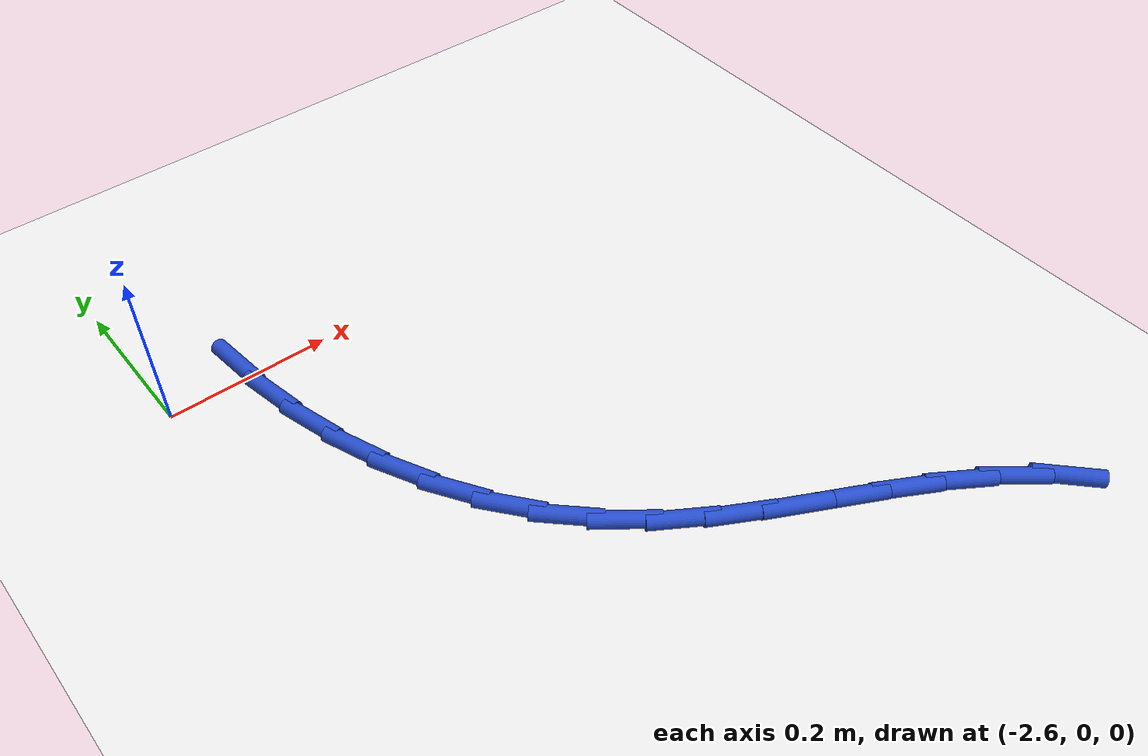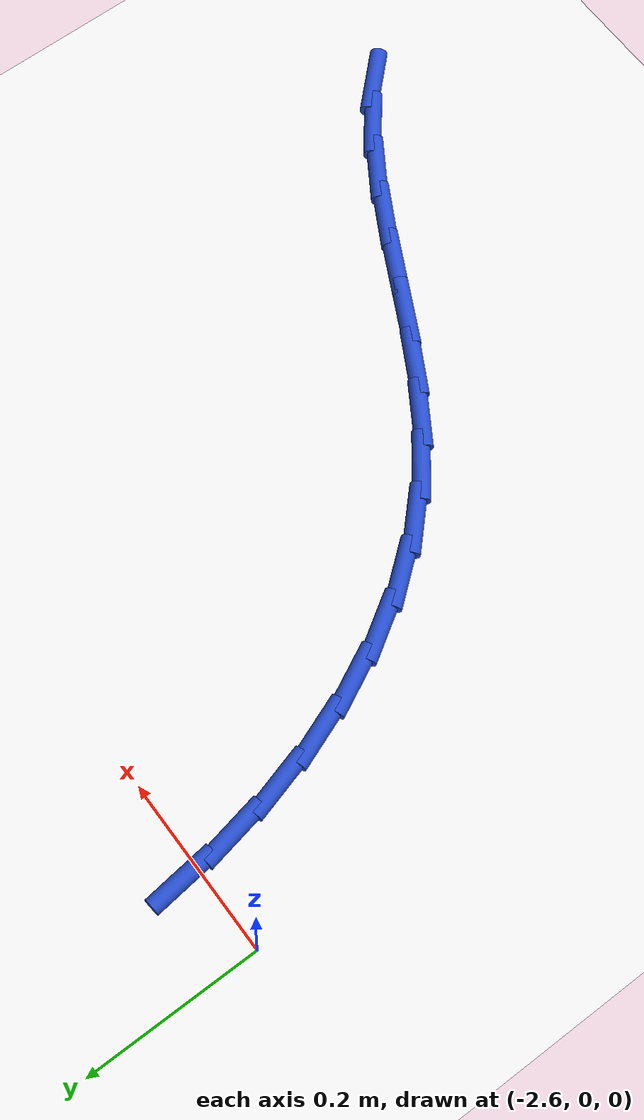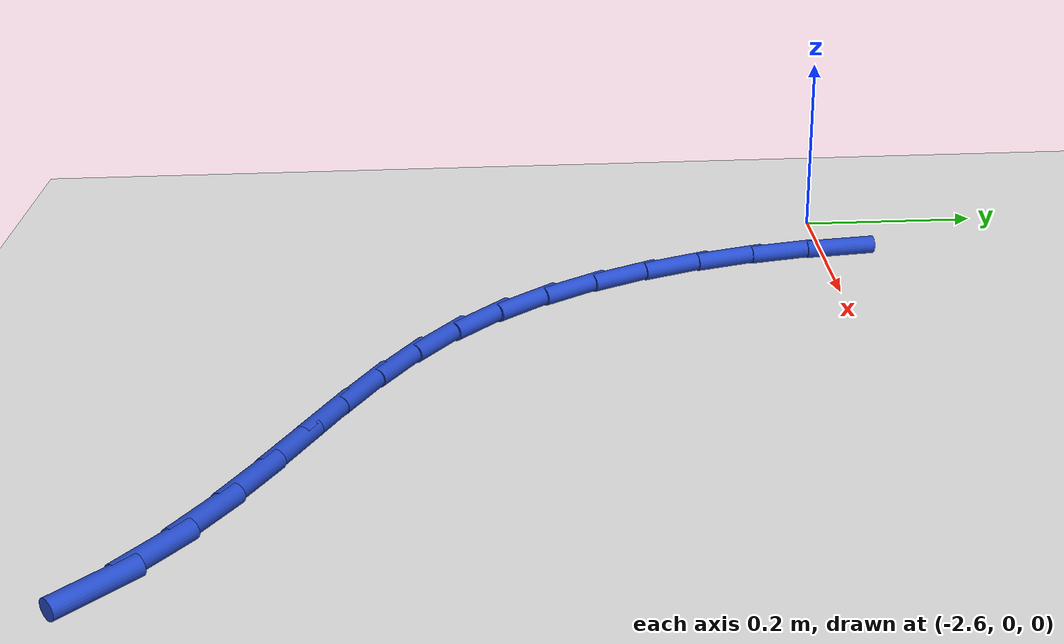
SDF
<sdf version="1.6">
 <world name="default">
  <model name="ground_plane">
   <static>1</static>
   <link name="link">
    <collision name="collision">
     <geometry><plane><normal>0 0 1</normal><size>100 100</size></plane></geometry>
     <surface><friction><ode><mu>100</mu><mu2>50</mu2></ode></friction></surface>
    </collision>
    <visual name="visual">
     <cast_shadows>0</cast_shadows>
     <geometry><plane><normal>0 0 1</normal><size>100 100</size></plane></geometry>
     <material>
      <script><uri>file://media/materials/scripts/gazebo.material</uri><name>Gazebo/WhiteGlow</name></script>
     </material>
    </visual>
   </link>
  </model>
  <model name="line">
   <link name="link_66">
    <pose>-2.5027474903569695 0.019230881125840347 0.01 0 1.57 -1.4562330927532967</pose>
    <collision name="collision">
     <geometry><cylinder><radius>0.01</radius><length>0.08</length></cylinder></geometry>
    </collision>
    <visual name="visual">
     <material>
      <script><name>Gazebo/Blue</name><uri>file://media/materials/scripts/gazebo.material</uri></script>
     </material>
     <geometry><cylinder><radius>0.01</radius><length>0.08</length></cylinder></geometry>
    </visual>
   </link>
   <link name="link_67">
    <pose>-2.4950839334856996 -0.04736989336510652 0.01 0 1.57 -1.3774307433401636</pose>
    <collision name="collision">
     <geometry><cylinder><radius>0.01</radius><length>0.08</length></cylinder></geometry>
    </collision>
    <visual name="visual">
     <material>
      <script><name>Gazebo/Blue</name><uri>file://media/materials/scripts/gazebo.material</uri></script>
     </material>
     <geometry><cylinder><radius>0.01</radius><length>0.08</length></cylinder></geometry>
    </visual>
   </link>
   <link name="link_68">
    <pose>-2.4823113702618294 -0.11259853952840747 0.01 0 1.57 -1.294803345546782</pose>
    <collision name="collision">
     <geometry><cylinder><radius>0.01</radius><length>0.08</length></cylinder></geometry>
    </collision>
    <visual name="visual">
     <material>
      <script><name>Gazebo/Blue</name><uri>file://media/materials/scripts/gazebo.material</uri></script>
     </material>
     <geometry><cylinder><radius>0.01</radius><length>0.08</length></cylinder></geometry>
    </visual>
   </link>
   <link name="link_69">
    <pose>-2.464422709136809 -0.1757600441526359 0.01 0 1.57 -1.2067801490936627</pose>
    <collision name="collision">
     <geometry><cylinder><radius>0.01</radius><length>0.08</length></cylinder></geometry>
    </collision>
    <visual name="visual">
     <material>
      <script><name>Gazebo/Blue</name><uri>file://media/materials/scripts/gazebo.material</uri></script>
     </material>
     <geometry><cylinder><radius>0.01</radius><length>0.08</length></cylinder></geometry>
    </visual>
   </link>
   <link name="link_70">
    <pose>-2.44141085856209 -0.23615939402636552 0.01 0 1.57 -1.111781051064293</pose>
    <collision name="collision">
     <geometry><cylinder><radius>0.01</radius><length>0.08</length></cylinder></geometry>
    </collision>
    <visual name="visual">
     <material>
      <script><name>Gazebo/Blue</name><uri>file://media/materials/scripts/gazebo.material</uri></script>
     </material>
     <geometry><cylinder><radius>0.01</radius><length>0.08</length></cylinder></geometry>
    </visual>
   </link>
   <link name="link_71">
    <pose>-2.4132687269891235 -0.2931015759381671 0.01 0 1.57 -1.0083139645344208</pose>
    <collision name="collision">
     <geometry><cylinder><radius>0.01</radius><length>0.08</length></cylinder></geometry>
    </collision>
    <visual name="visual">
     <material>
      <script><name>Gazebo/Blue</name><uri>file://media/materials/scripts/gazebo.material</uri></script>
     </material>
     <geometry><cylinder><radius>0.01</radius><length>0.08</length></cylinder></geometry>
    </visual>
   </link>
   <link name="link_72">
    <pose>-2.3799892228693604 -0.3458915766766143 0.01 0 1.57 -0.8951692463080796</pose>
    <collision name="collision">
     <geometry><cylinder><radius>0.01</radius><length>0.08</length></cylinder></geometry>
    </collision>
    <visual name="visual">
     <material>
      <script><name>Gazebo/Blue</name><uri>file://media/materials/scripts/gazebo.material</uri></script>
     </material>
     <geometry><cylinder><radius>0.01</radius><length>0.08</length></cylinder></geometry>
    </visual>
   </link>
   <link name="link_73">
    <pose>-2.3415652546542507 -0.3938343830302795 0.01 0 1.57 -0.7718606393758829</pose>
    <collision name="collision">
     <geometry><cylinder><radius>0.01</radius><length>0.08</length></cylinder></geometry>
    </collision>
    <visual name="visual">
     <material>
      <script><name>Gazebo/Blue</name><uri>file://media/materials/scripts/gazebo.material</uri></script>
     </material>
     <geometry><cylinder><radius>0.01</radius><length>0.08</length></cylinder></geometry>
    </visual>
   </link>
   <link name="link_74">
    <pose>-2.297993942777554 -0.4362416862319648 0.01 0 1.57 -0.6520340806999187</pose>
    <collision name="collision">
     <geometry><cylinder><radius>0.01</radius><length>0.08</length></cylinder></geometry>
    </collision>
    <visual name="visual">
     <material>
      <script><name>Gazebo/Blue</name><uri>file://media/materials/scripts/gazebo.material</uri></script>
     </material>
     <geometry><cylinder><radius>0.01</radius><length>0.08</length></cylinder></geometry>
    </visual>
   </link>
   <link name="link_75">
    <pose>-2.249701867637872 -0.4731087725944767 0.01 0 1.57 -0.5615933069159179</pose>
    <collision name="collision">
     <geometry><cylinder><radius>0.01</radius><length>0.08</length></cylinder></geometry>
    </collision>
    <visual name="visual">
     <material>
      <script><name>Gazebo/Blue</name><uri>file://media/materials/scripts/gazebo.material</uri></script>
     </material>
     <geometry><cylinder><radius>0.01</radius><length>0.08</length></cylinder></geometry>
    </visual>
   </link>
   <link name="link_76">
    <pose>-2.1979096973795005 -0.5056949216325084 0.01 0 1.57 -0.5029722231082063</pose>
    <collision name="collision">
     <geometry><cylinder><radius>0.01</radius><length>0.08</length></cylinder></geometry>
    </collision>
    <visual name="visual">
     <material>
      <script><name>Gazebo/Blue</name><uri>file://media/materials/scripts/gazebo.material</uri></script>
     </material>
     <geometry><cylinder><radius>0.01</radius><length>0.08</length></cylinder></geometry>
    </visual>
   </link>
   <link name="link_77">
    <pose>-2.143923992116856 -0.535396131840395 0.01 0 1.57 -0.47489594763471044</pose>
    <collision name="collision">
     <geometry><cylinder><radius>0.01</radius><length>0.08</length></cylinder></geometry>
    </collision>
    <visual name="visual">
     <material>
      <script><name>Gazebo/Blue</name><uri>file://media/materials/scripts/gazebo.material</uri></script>
     </material>
     <geometry><cylinder><radius>0.01</radius><length>0.08</length></cylinder></geometry>
    </visual>
   </link>
   <link name="link_78">
    <pose>-2.089051311964357 -0.5636084017124725 0.01 0 1.57 -0.4766777373030886</pose>
    <collision name="collision">
     <geometry><cylinder><radius>0.01</radius><length>0.08</length></cylinder></geometry>
    </collision>
    <visual name="visual">
     <material>
      <script><name>Gazebo/Blue</name><uri>file://media/materials/scripts/gazebo.material</uri></script>
     </material>
     <geometry><cylinder><radius>0.01</radius><length>0.08</length></cylinder></geometry>
    </visual>
   </link>
   <link name="link_79">
    <pose>-2.0345982170364247 -0.5917277297430753 0.01 0 1.57 -0.5089752910856162</pose>
    <collision name="collision">
     <geometry><cylinder><radius>0.01</radius><length>0.08</length></cylinder></geometry>
    </collision>
    <visual name="visual">
     <material>
      <script><name>Gazebo/Blue</name><uri>file://media/materials/scripts/gazebo.material</uri></script>
     </material>
     <geometry><cylinder><radius>0.01</radius><length>0.08</length></cylinder></geometry>
    </visual>
   </link>
   <link name="link_80">
    <pose>-1.981871267447477 -0.621150114426539 0.01 0 1.57 -0.5738272488511956</pose>
    <collision name="collision">
     <geometry><cylinder><radius>0.01</radius><length>0.08</length></cylinder></geometry>
    </collision>
    <visual name="visual">
     <material>
      <script><name>Gazebo/Blue</name><uri>file://media/materials/scripts/gazebo.material</uri></script>
     </material>
     <geometry><cylinder><radius>0.01</radius><length>0.08</length></cylinder></geometry>
    </visual>
   </link>
   <link name="link_81">
    <pose>-1.9321770233119326 -0.6532715542571991 0.01 0 1.57 -0.6738329505374722</pose>
    <collision name="collision">
     <geometry><cylinder><radius>0.01</radius><length>0.08</length></cylinder></geometry>
    </collision>
    <visual name="visual">
     <material>
      <script><name>Gazebo/Blue</name><uri>file://media/materials/scripts/gazebo.material</uri></script>
     </material>
     <geometry><cylinder><radius>0.01</radius><length>0.08</length></cylinder></geometry>
    </visual>
   </link>
   <link name="link_82">
    <pose>-1.8868220447442106 -0.6894880477293903 0.01 0 1.57 -0.8029742518221461</pose>
    <collision name="collision">
     <geometry><cylinder><radius>0.01</radius><length>0.08</length></cylinder></geometry>
    </collision>
    <visual name="visual">
     <material>
      <script><name>Gazebo/Blue</name><uri>file://media/materials/scripts/gazebo.material</uri></script>
     </material>
     <geometry><cylinder><radius>0.01</radius><length>0.08</length></cylinder></geometry>
    </visual>
   </link>
  </model>
 </world>
</sdf>
